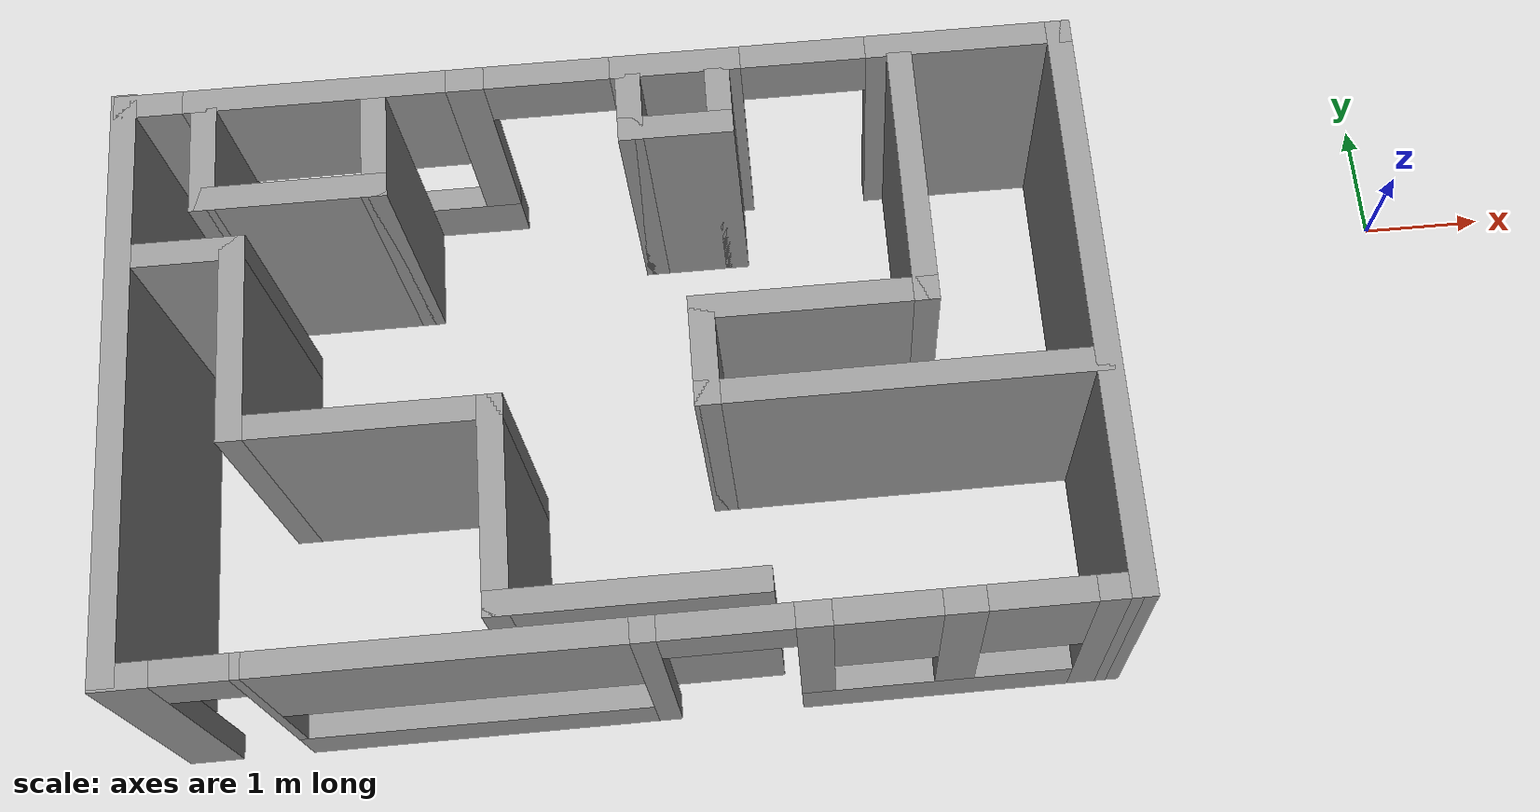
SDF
<?xml version='1.0'?>
<sdf version='1.4'>
  <model name='room_experiments'>
    <link name='Wall_0'>
      <pose>-6.64556 0.829551 0 0 -0 0</pose>
      <visual name='Wall_0_Visual_0'>
        <pose>-3.535 0 1.25 0 -0 0</pose>
        <geometry>
          <box>
            <size>0.540007 0.2 2.5</size>
          </box>
        </geometry>
        <material>
          <script>
            <uri>file://media/materials/scripts/gazebo.material</uri>
            <name>Gazebo/Grey</name>
          </script>
        </material>
      </visual>
      <collision name='Wall_0_Collision_0'>
        <geometry>
          <box>
            <size>0.540007 0.2 2.5</size>
          </box>
        </geometry>
        <pose>-3.535 0 1.25 0 -0 0</pose>
      </collision>
      <visual name='Wall_0_Visual_1'>
        <pose>0.625003 0 1.25 0 -0 0</pose>
        <geometry>
          <box>
            <size>1.04 0.2 2.5</size>
          </box>
        </geometry>
        <material>
          <script>
            <uri>file://media/materials/scripts/gazebo.material</uri>
            <name>Gazebo/Grey</name>
          </script>
        </material>
      </visual>
      <collision name='Wall_0_Collision_1'>
        <geometry>
          <box>
            <size>1.04 0.2 2.5</size>
          </box>
        </geometry>
        <pose>0.625003 0 1.25 0 -0 0</pose>
      </collision>
      <visual name='Wall_0_Visual_2'>
        <pose>2.975 0 1.25 0 -0 0</pose>
        <geometry>
          <box>
            <size>1.66 0.2 2.5</size>
          </box>
        </geometry>
        <material>
          <script>
            <uri>file://media/materials/scripts/gazebo.material</uri>
            <name>Gazebo/Grey</name>
          </script>
        </material>
      </visual>
      <collision name='Wall_0_Collision_2'>
        <geometry>
          <box>
            <size>1.66 0.2 2.5</size>
          </box>
        </geometry>
        <pose>2.975 0 1.25 0 -0 0</pose>
      </collision>
      <visual name='Wall_0_Visual_3'>
        <pose>-2.08 0 0.25 0 -0 0</pose>
        <geometry>
          <box>
            <size>2.37 0.2 0.5</size>
          </box>
        </geometry>
        <material>
          <script>
            <uri>file://media/materials/scripts/gazebo.material</uri>
            <name>Gazebo/Grey</name>
          </script>
        </material>
      </visual>
      <collision name='Wall_0_Collision_3'>
        <geometry>
          <box>
            <size>2.37 0.2 0.5</size>
          </box>
        </geometry>
        <pose>-2.08 0 0.25 0 -0 0</pose>
      </collision>
      <visual name='Wall_0_Visual_4'>
        <pose>-1.045 0 1.5 0 -0 0</pose>
        <geometry>
          <box>
            <size>0.3 0.2 2</size>
          </box>
        </geometry>
        <material>
          <script>
            <uri>file://media/materials/scripts/gazebo.material</uri>
            <name>Gazebo/Grey</name>
          </script>
        </material>
      </visual>
      <collision name='Wall_0_Collision_4'>
        <geometry>
          <box>
            <size>0.3 0.2 2</size>
          </box>
        </geometry>
        <pose>-1.045 0 1.5 0 -0 0</pose>
      </collision>
      <visual name='Wall_0_Visual_5'>
        <pose>-2.23 0 1.9 0 -0 0</pose>
        <geometry>
          <box>
            <size>2.07 0.2 1.2</size>
          </box>
        </geometry>
        <material>
          <script>
            <uri>file://media/materials/scripts/gazebo.material</uri>
            <name>Gazebo/Grey</name>
          </script>
        </material>
      </visual>
      <collision name='Wall_0_Collision_5'>
        <geometry>
          <box>
            <size>2.07 0.2 1.2</size>
          </box>
        </geometry>
        <pose>-2.23 0 1.9 0 -0 0</pose>
      </collision>
      <visual name='Wall_0_Visual_6'>
        <pose>1.645 0 2.25 0 -0 0</pose>
        <geometry>
          <box>
            <size>1 0.2 0.5</size>
          </box>
        </geometry>
        <material>
          <script>
            <uri>file://media/materials/scripts/gazebo.material</uri>
            <name>Gazebo/Grey</name>
          </script>
        </material>
      </visual>
      <collision name='Wall_0_Collision_6'>
        <geometry>
          <box>
            <size>1 0.2 0.5</size>
          </box>
        </geometry>
        <pose>1.645 0 2.25 0 -0 0</pose>
      </collision>
      <visual name='Wall_0_Visual_7'>
        <pose>-0.394997 0 2.25 0 -0 0</pose>
        <geometry>
          <box>
            <size>1 0.2 0.5</size>
          </box>
        </geometry>
        <material>
          <script>
            <uri>file://media/materials/scripts/gazebo.material</uri>
            <name>Gazebo/Grey</name>
          </script>
        </material>
      </visual>
      <collision name='Wall_0_Collision_7'>
        <geometry>
          <box>
            <size>1 0.2 0.5</size>
          </box>
        </geometry>
        <pose>-0.394997 0 2.25 0 -0 0</pose>
      </collision>
    </link>
    <link name='Wall_1'>
      <collision name='Wall_1_Collision'>
        <geometry>
          <box>
            <size>4.81 0.2 2.5</size>
          </box>
        </geometry>
        <pose>0 0 1.25 0 -0 0</pose>
      </collision>
      <visual name='Wall_1_Visual'>
        <pose>0 0 1.25 0 -0 0</pose>
        <geometry>
          <box>
            <size>4.81 0.2 2.5</size>
          </box>
        </geometry>
        <material>
          <script>
            <uri>file://media/materials/scripts/gazebo.material</uri>
            <name>Gazebo/Grey</name>
          </script>
        </material>
      </visual>
      <velocity_decay>
        <linear>0</linear>
        <angular>0</angular>
      </velocity_decay>
      <pose>-2.93056 -1.47545 0 0 0 -1.56646</pose>
    </link>
    <link name='Wall_10'>
      <collision name='Wall_10_Collision'>
        <geometry>
          <box>
            <size>0.59 0.2 2.5</size>
          </box>
        </geometry>
        <pose>0 0 1.25 0 -0 0</pose>
      </collision>
      <visual name='Wall_10_Visual'>
        <pose>0 0 1.25 0 -0 0</pose>
        <geometry>
          <box>
            <size>0.59 0.2 2.5</size>
          </box>
        </geometry>
        <material>
          <script>
            <uri>file://media/materials/scripts/gazebo.material</uri>
            <name>Gazebo/Grey</name>
          </script>
        </material>
      </visual>
      <velocity_decay>
        <linear>0</linear>
        <angular>0</angular>
      </velocity_decay>
      <pose>-6.40186 0.464116 0 0 0 -1.5708</pose>
    </link>
    <link name='Wall_11'>
      <collision name='Wall_11_Collision'>
        <geometry>
          <box>
            <size>0.91 0.2 2.5</size>
          </box>
        </geometry>
        <pose>0 0 1.25 0 -0 0</pose>
      </collision>
      <visual name='Wall_11_Visual'>
        <pose>0 0 1.25 0 -0 0</pose>
        <geometry>
          <box>
            <size>0.91 0.2 2.5</size>
          </box>
        </geometry>
        <material>
          <script>
            <uri>file://media/materials/scripts/gazebo.material</uri>
            <name>Gazebo/Grey</name>
          </script>
        </material>
      </visual>
      <velocity_decay>
        <linear>0</linear>
        <angular>0</angular>
      </velocity_decay>
      <pose>-6.04686 0.269116 0 0 -0 0</pose>
    </link>
    <link name='Wall_12'>
      <collision name='Wall_12_Collision'>
        <geometry>
          <box>
            <size>0.58 0.2 2.5</size>
          </box>
        </geometry>
        <pose>0 0 1.25 0 -0 0</pose>
      </collision>
      <visual name='Wall_12_Visual'>
        <pose>0 0 1.25 0 -0 0</pose>
        <geometry>
          <box>
            <size>0.58 0.2 2.5</size>
          </box>
        </geometry>
        <material>
          <script>
            <uri>file://media/materials/scripts/gazebo.material</uri>
            <name>Gazebo/Grey</name>
          </script>
        </material>
      </visual>
      <velocity_decay>
        <linear>0</linear>
        <angular>0</angular>
      </velocity_decay>
      <pose>-5.69186 0.459116 0 0 -0 1.5708</pose>
    </link>
    <link name='Wall_14'>
      <collision name='Wall_14_Collision'>
        <geometry>
          <box>
            <size>2.17 0.2 2.5</size>
          </box>
        </geometry>
        <pose>0 0 1.25 0 -0 0</pose>
      </collision>
      <visual name='Wall_14_Visual'>
        <pose>0 0 1.25 0 -0 0</pose>
        <geometry>
          <box>
            <size>2.17 0.2 2.5</size>
          </box>
        </geometry>
        <material>
          <script>
            <uri>file://media/materials/scripts/gazebo.material</uri>
            <name>Gazebo/Grey</name>
          </script>
        </material>
      </visual>
      <velocity_decay>
        <linear>0</linear>
        <angular>0</angular>
      </velocity_decay>
      <pose>-4.23186 -0.325884 0 0 0 -1.5708</pose>
    </link>
    <link name='Wall_15'>
      <collision name='Wall_15_Collision'>
        <geometry>
          <box>
            <size>1.92 0.2 2.5</size>
          </box>
        </geometry>
        <pose>0 0 1.25 0 -0 0</pose>
      </collision>
      <visual name='Wall_15_Visual'>
        <pose>0 0 1.25 0 -0 0</pose>
        <geometry>
          <box>
            <size>1.92 0.2 2.5</size>
          </box>
        </geometry>
        <material>
          <script>
            <uri>file://media/materials/scripts/gazebo.material</uri>
            <name>Gazebo/Grey</name>
          </script>
        </material>
      </visual>
      <velocity_decay>
        <linear>0</linear>
        <angular>0</angular>
      </velocity_decay>
      <pose>-5.09186 -1.31088 0 0 -0 3.14159</pose>
    </link>
    <link name='Wall_16'>
      <collision name='Wall_16_Collision'>
        <geometry>
          <box>
            <size>0.9 0.2 2.5</size>
          </box>
        </geometry>
        <pose>0 0 1.25 0 -0 0</pose>
      </collision>
      <visual name='Wall_16_Visual'>
        <pose>0 0 1.25 0 -0 0</pose>
        <geometry>
          <box>
            <size>0.9 0.2 2.5</size>
          </box>
        </geometry>
        <material>
          <script>
            <uri>file://media/materials/scripts/gazebo.material</uri>
            <name>Gazebo/Grey</name>
          </script>
        </material>
      </visual>
      <velocity_decay>
        <linear>0</linear>
        <angular>0</angular>
      </velocity_decay>
      <pose>-5.95186 -1.66088 0 0 0 -1.5708</pose>
    </link>
    <link name='Wall_17'>
      <collision name='Wall_17_Collision'>
        <geometry>
          <box>
            <size>3.16 0.2 2.5</size>
          </box>
        </geometry>
        <pose>0 0 1.25 0 -0 0</pose>
      </collision>
      <visual name='Wall_17_Visual'>
        <pose>0 0 1.25 0 -0 0</pose>
        <geometry>
          <box>
            <size>3.16 0.2 2.5</size>
          </box>
        </geometry>
        <material>
          <script>
            <uri>file://media/materials/scripts/gazebo.material</uri>
            <name>Gazebo/Grey</name>
          </script>
        </material>
      </visual>
      <velocity_decay>
        <linear>0</linear>
        <angular>0</angular>
      </velocity_decay>
      <pose>-4.47186 -2.01088 0 0 -0 0</pose>
    </link>
    <link name='Wall_19'>
      <collision name='Wall_19_Collision'>
        <geometry>
          <box>
            <size>2.1 0.2 2.5</size>
          </box>
        </geometry>
        <pose>0 0 1.25 0 -0 0</pose>
      </collision>
      <visual name='Wall_19_Visual'>
        <pose>0 0 1.25 0 -0 0</pose>
        <geometry>
          <box>
            <size>2.1 0.2 2.5</size>
          </box>
        </geometry>
        <material>
          <script>
            <uri>file://media/materials/scripts/gazebo.material</uri>
            <name>Gazebo/Grey</name>
          </script>
        </material>
      </visual>
      <velocity_decay>
        <linear>0</linear>
        <angular>0</angular>
      </velocity_decay>
      <pose>-6.62186 -3.49088 0 0 -0 3.14159</pose>
    </link>
    <link name='Wall_2'>
      <pose>-6.64556 -3.78045 0 0 -0 3.14159</pose>
      <visual name='Wall_2_Visual_0'>
        <pose>-3.61 0 1.25 0 -0 0</pose>
        <geometry>
          <box>
            <size>0.43 0.2 2.5</size>
          </box>
        </geometry>
        <material>
          <script>
            <uri>file://media/materials/scripts/gazebo.material</uri>
            <name>Gazebo/Grey</name>
          </script>
        </material>
      </visual>
      <collision name='Wall_2_Collision_0'>
        <geometry>
          <box>
            <size>0.43 0.2 2.5</size>
          </box>
        </geometry>
        <pose>-3.61 0 1.25 0 -0 0</pose>
      </collision>
      <visual name='Wall_2_Visual_1'>
        <pose>-0.11 0 1.25 0 -0 0</pose>
        <geometry>
          <box>
            <size>0.19 0.2 2.5</size>
          </box>
        </geometry>
        <material>
          <script>
            <uri>file://media/materials/scripts/gazebo.material</uri>
            <name>Gazebo/Grey</name>
          </script>
        </material>
      </visual>
      <collision name='Wall_2_Collision_1'>
        <geometry>
          <box>
            <size>0.19 0.2 2.5</size>
          </box>
        </geometry>
        <pose>-0.11 0 1.25 0 -0 0</pose>
      </collision>
      <visual name='Wall_2_Visual_2'>
        <pose>3.6075 0 1.25 0 -0 0</pose>
        <geometry>
          <box>
            <size>0.435 0.2 2.5</size>
          </box>
        </geometry>
        <material>
          <script>
            <uri>file://media/materials/scripts/gazebo.material</uri>
            <name>Gazebo/Grey</name>
          </script>
        </material>
      </visual>
      <collision name='Wall_2_Collision_2'>
        <geometry>
          <box>
            <size>0.435 0.2 2.5</size>
          </box>
        </geometry>
        <pose>3.6075 0 1.25 0 -0 0</pose>
      </collision>
      <visual name='Wall_2_Visual_3'>
        <pose>-2.3 0 0.25 0 -0 0</pose>
        <geometry>
          <box>
            <size>2.19 0.2 0.5</size>
          </box>
        </geometry>
        <material>
          <script>
            <uri>file://media/materials/scripts/gazebo.material</uri>
            <name>Gazebo/Grey</name>
          </script>
        </material>
      </visual>
      <collision name='Wall_2_Collision_3'>
        <geometry>
          <box>
            <size>2.19 0.2 0.5</size>
          </box>
        </geometry>
        <pose>-2.3 0 0.25 0 -0 0</pose>
      </collision>
      <visual name='Wall_2_Visual_4'>
        <pose>1.4025 0 0.25 0 -0 0</pose>
        <geometry>
          <box>
            <size>2.835 0.2 0.5</size>
          </box>
        </geometry>
        <material>
          <script>
            <uri>file://media/materials/scripts/gazebo.material</uri>
            <name>Gazebo/Grey</name>
          </script>
        </material>
      </visual>
      <collision name='Wall_2_Collision_4'>
        <geometry>
          <box>
            <size>2.835 0.2 0.5</size>
          </box>
        </geometry>
        <pose>1.4025 0 0.25 0 -0 0</pose>
      </collision>
      <visual name='Wall_2_Visual_5'>
        <pose>-2.435 0 1.5 0 -0 0</pose>
        <geometry>
          <box>
            <size>0.32 0.2 2</size>
          </box>
        </geometry>
        <material>
          <script>
            <uri>file://media/materials/scripts/gazebo.material</uri>
            <name>Gazebo/Grey</name>
          </script>
        </material>
      </visual>
      <collision name='Wall_2_Collision_5'>
        <geometry>
          <box>
            <size>0.32 0.2 2</size>
          </box>
        </geometry>
        <pose>-2.435 0 1.5 0 -0 0</pose>
      </collision>
      <visual name='Wall_2_Visual_6'>
        <pose>-1.34 0 1.5 0 -0 0</pose>
        <geometry>
          <box>
            <size>0.27 0.2 2</size>
          </box>
        </geometry>
        <material>
          <script>
            <uri>file://media/materials/scripts/gazebo.material</uri>
            <name>Gazebo/Grey</name>
          </script>
        </material>
      </visual>
      <collision name='Wall_2_Collision_6'>
        <geometry>
          <box>
            <size>0.27 0.2 2</size>
          </box>
        </geometry>
        <pose>-1.34 0 1.5 0 -0 0</pose>
      </collision>
      <visual name='Wall_2_Visual_7'>
        <pose>-1.34 0 1.5 0 -0 0</pose>
        <geometry>
          <box>
            <size>0.27 0.2 2</size>
          </box>
        </geometry>
        <material>
          <script>
            <uri>file://media/materials/scripts/gazebo.material</uri>
            <name>Gazebo/Grey</name>
          </script>
        </material>
      </visual>
      <collision name='Wall_2_Collision_7'>
        <geometry>
          <box>
            <size>0.27 0.2 2</size>
          </box>
        </geometry>
        <pose>-1.34 0 1.5 0 -0 0</pose>
      </collision>
      <visual name='Wall_2_Visual_8'>
        <pose>2.7825 0 1.5 0 -0 0</pose>
        <geometry>
          <box>
            <size>0.075 0.2 2</size>
          </box>
        </geometry>
        <material>
          <script>
            <uri>file://media/materials/scripts/gazebo.material</uri>
            <name>Gazebo/Grey</name>
          </script>
        </material>
      </visual>
      <collision name='Wall_2_Collision_8'>
        <geometry>
          <box>
            <size>0.075 0.2 2</size>
          </box>
        </geometry>
        <pose>2.7825 0 1.5 0 -0 0</pose>
      </collision>
      <visual name='Wall_2_Visual_9'>
        <pose>-2.995 0 1.9 0 -0 0</pose>
        <geometry>
          <box>
            <size>0.8 0.2 1.2</size>
          </box>
        </geometry>
        <material>
          <script>
            <uri>file://media/materials/scripts/gazebo.material</uri>
            <name>Gazebo/Grey</name>
          </script>
        </material>
      </visual>
      <collision name='Wall_2_Collision_9'>
        <geometry>
          <box>
            <size>0.8 0.2 1.2</size>
          </box>
        </geometry>
        <pose>-2.995 0 1.9 0 -0 0</pose>
      </collision>
      <visual name='Wall_2_Visual_10'>
        <pose>1.365 0 1.9 0 -0 0</pose>
        <geometry>
          <box>
            <size>2.76 0.2 1.2</size>
          </box>
        </geometry>
        <material>
          <script>
            <uri>file://media/materials/scripts/gazebo.material</uri>
            <name>Gazebo/Grey</name>
          </script>
        </material>
      </visual>
      <collision name='Wall_2_Collision_10'>
        <geometry>
          <box>
            <size>2.76 0.2 1.2</size>
          </box>
        </geometry>
        <pose>1.365 0 1.9 0 -0 0</pose>
      </collision>
      <visual name='Wall_2_Visual_11'>
        <pose>-1.875 0 1.9 0 -0 0</pose>
        <geometry>
          <box>
            <size>0.8 0.2 1.2</size>
          </box>
        </geometry>
        <material>
          <script>
            <uri>file://media/materials/scripts/gazebo.material</uri>
            <name>Gazebo/Grey</name>
          </script>
        </material>
      </visual>
      <collision name='Wall_2_Collision_11'>
        <geometry>
          <box>
            <size>0.8 0.2 1.2</size>
          </box>
        </geometry>
        <pose>-1.875 0 1.9 0 -0 0</pose>
      </collision>
      <visual name='Wall_2_Visual_12'>
        <pose>-0.705 0 2.25 0 -0 0</pose>
        <geometry>
          <box>
            <size>1 0.2 0.5</size>
          </box>
        </geometry>
        <material>
          <script>
            <uri>file://media/materials/scripts/gazebo.material</uri>
            <name>Gazebo/Grey</name>
          </script>
        </material>
      </visual>
      <collision name='Wall_2_Collision_12'>
        <geometry>
          <box>
            <size>1 0.2 0.5</size>
          </box>
        </geometry>
        <pose>-0.705 0 2.25 0 -0 0</pose>
      </collision>
      <visual name='Wall_2_Visual_13'>
        <pose>-0.705 0 2.25 0 -0 0</pose>
        <geometry>
          <box>
            <size>1 0.2 0.5</size>
          </box>
        </geometry>
        <material>
          <script>
            <uri>file://media/materials/scripts/gazebo.material</uri>
            <name>Gazebo/Grey</name>
          </script>
        </material>
      </visual>
      <collision name='Wall_2_Collision_13'>
        <geometry>
          <box>
            <size>1 0.2 0.5</size>
          </box>
        </geometry>
        <pose>-0.705 0 2.25 0 -0 0</pose>
      </collision>
      <visual name='Wall_2_Visual_14'>
        <pose>3.105 0 2.25 0 -0 0</pose>
        <geometry>
          <box>
            <size>0.57 0.2 0.5</size>
          </box>
        </geometry>
        <material>
          <script>
            <uri>file://media/materials/scripts/gazebo.material</uri>
            <name>Gazebo/Grey</name>
          </script>
        </material>
      </visual>
      <collision name='Wall_2_Collision_14'>
        <geometry>
          <box>
            <size>0.57 0.2 0.5</size>
          </box>
        </geometry>
        <pose>3.105 0 2.25 0 -0 0</pose>
      </collision>
    </link>
    <link name='Wall_20'>
      <collision name='Wall_20_Collision'>
        <geometry>
          <box>
            <size>1.72 0.2 2.5</size>
          </box>
        </geometry>
        <pose>0 0 1.25 0 -0 0</pose>
      </collision>
      <visual name='Wall_20_Visual'>
        <pose>0 0 1.25 0 -0 0</pose>
        <geometry>
          <box>
            <size>1.72 0.2 2.5</size>
          </box>
        </geometry>
        <material>
          <script>
            <uri>file://media/materials/scripts/gazebo.material</uri>
            <name>Gazebo/Grey</name>
          </script>
        </material>
      </visual>
      <velocity_decay>
        <linear>0</linear>
        <angular>0</angular>
      </velocity_decay>
      <pose>-7.57186 -2.73088 0 0 -0 1.5708</pose>
    </link>
    <link name='Wall_21'>
      <collision name='Wall_21_Collision'>
        <geometry>
          <box>
            <size>2.13 0.2 2.5</size>
          </box>
        </geometry>
        <pose>0 0 1.25 0 -0 0</pose>
      </collision>
      <visual name='Wall_21_Visual'>
        <pose>0 0 1.25 0 -0 0</pose>
        <geometry>
          <box>
            <size>2.13 0.2 2.5</size>
          </box>
        </geometry>
        <material>
          <script>
            <uri>file://media/materials/scripts/gazebo.material</uri>
            <name>Gazebo/Grey</name>
          </script>
        </material>
      </visual>
      <velocity_decay>
        <linear>0</linear>
        <angular>0</angular>
      </velocity_decay>
      <pose>-8.53686 -1.97088 0 0 -0 3.14159</pose>
    </link>
    <link name='Wall_22'>
      <collision name='Wall_22_Collision'>
        <geometry>
          <box>
            <size>1.69 0.2 2.5</size>
          </box>
        </geometry>
        <pose>0 0 1.25 0 -0 0</pose>
      </collision>
      <visual name='Wall_22_Visual'>
        <pose>0 0 1.25 0 -0 0</pose>
        <geometry>
          <box>
            <size>1.69 0.2 2.5</size>
          </box>
        </geometry>
        <material>
          <script>
            <uri>file://media/materials/scripts/gazebo.material</uri>
            <name>Gazebo/Grey</name>
          </script>
        </material>
      </visual>
      <velocity_decay>
        <linear>0</linear>
        <angular>0</angular>
      </velocity_decay>
      <pose>-9.50186 -1.22588 0 0 -0 1.5708</pose>
    </link>
    <link name='Wall_23'>
      <collision name='Wall_23_Collision'>
        <geometry>
          <box>
            <size>1.03 0.2 2.5</size>
          </box>
        </geometry>
        <pose>0 0 1.25 0 -0 0</pose>
      </collision>
      <visual name='Wall_23_Visual'>
        <pose>0 0 1.25 0 -0 0</pose>
        <geometry>
          <box>
            <size>1.03 0.2 2.5</size>
          </box>
        </geometry>
        <material>
          <script>
            <uri>file://media/materials/scripts/gazebo.material</uri>
            <name>Gazebo/Grey</name>
          </script>
        </material>
      </visual>
      <velocity_decay>
        <linear>0</linear>
        <angular>0</angular>
      </velocity_decay>
      <pose>-9.91686 -0.480884 0 0 -0 3.14159</pose>
    </link>
    <link name='Wall_4'>
      <collision name='Wall_4_Collision'>
        <geometry>
          <box>
            <size>4.8 0.2 2.5</size>
          </box>
        </geometry>
        <pose>0 0 1.25 0 -0 0</pose>
      </collision>
      <visual name='Wall_4_Visual'>
        <pose>0 0 1.25 0 -0 0</pose>
        <geometry>
          <box>
            <size>4.8 0.2 2.5</size>
          </box>
        </geometry>
        <material>
          <script>
            <uri>file://media/materials/scripts/gazebo.material</uri>
            <name>Gazebo/Grey</name>
          </script>
        </material>
      </visual>
      <velocity_decay>
        <linear>0</linear>
        <angular>0</angular>
      </velocity_decay>
      <pose>-10.3706 -1.46045 0 0 0 -1.5708</pose>
    </link>
    <link name='Wall_6'>
      <collision name='Wall_6_Collision'>
        <geometry>
          <box>
            <size>0.9 0.2 2.5</size>
          </box>
        </geometry>
        <pose>0 0 1.25 0 -0 0</pose>
      </collision>
      <visual name='Wall_6_Visual'>
        <pose>0 0 1.25 0 -0 0</pose>
        <geometry>
          <box>
            <size>0.9 0.2 2.5</size>
          </box>
        </geometry>
        <material>
          <script>
            <uri>file://media/materials/scripts/gazebo.material</uri>
            <name>Gazebo/Grey</name>
          </script>
        </material>
      </visual>
      <velocity_decay>
        <linear>0</linear>
        <angular>0</angular>
      </velocity_decay>
      <pose>-9.74186 0.309116 0 0 0 -1.5708</pose>
    </link>
    <link name='Wall_7'>
      <collision name='Wall_7_Collision'>
        <geometry>
          <box>
            <size>1.53 0.2 2.5</size>
          </box>
        </geometry>
        <pose>0 0 1.25 0 -0 0</pose>
      </collision>
      <visual name='Wall_7_Visual'>
        <pose>0 0 1.25 0 -0 0</pose>
        <geometry>
          <box>
            <size>1.53 0.2 2.5</size>
          </box>
        </geometry>
        <material>
          <script>
            <uri>file://media/materials/scripts/gazebo.material</uri>
            <name>Gazebo/Grey</name>
          </script>
        </material>
      </visual>
      <velocity_decay>
        <linear>0</linear>
        <angular>0</angular>
      </velocity_decay>
      <pose>-9.07686 -0.040884 0 0 -0 0</pose>
    </link>
    <link name='Wall_8'>
      <collision name='Wall_8_Collision'>
        <geometry>
          <box>
            <size>0.88 0.2 2.5</size>
          </box>
        </geometry>
        <pose>0 0 1.25 0 -0 0</pose>
      </collision>
      <visual name='Wall_8_Visual'>
        <pose>0 0 1.25 0 -0 0</pose>
        <geometry>
          <box>
            <size>0.88 0.2 2.5</size>
          </box>
        </geometry>
        <material>
          <script>
            <uri>file://media/materials/scripts/gazebo.material</uri>
            <name>Gazebo/Grey</name>
          </script>
        </material>
      </visual>
      <velocity_decay>
        <linear>0</linear>
        <angular>0</angular>
      </velocity_decay>
      <pose>-8.41186 0.299116 0 0 -0 1.5708</pose>
    </link>
    <static>1</static>
  </model>
</sdf>
